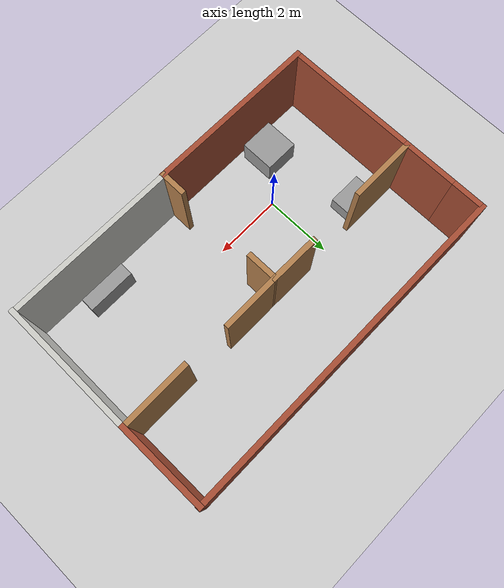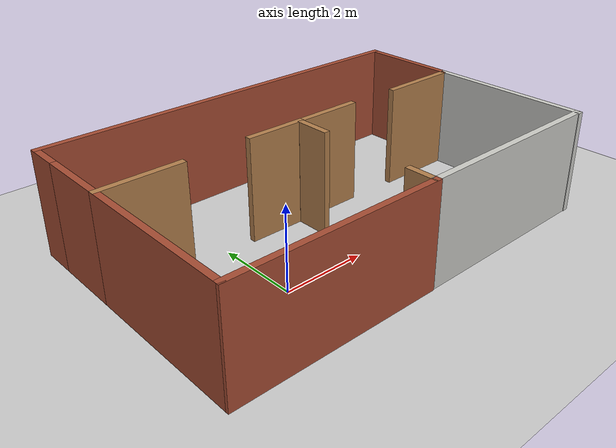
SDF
<sdf version="1.7">
 <world name="default">
  <light name="sun" type="directional">
   <pose>0 0 10 0 -0 0</pose>
   <diffuse>0.8 0.8 0.8 1</diffuse>
   <specular>0.2 0.2 0.2 1</specular>
   <attenuation>
    <range>1000</range>
    <constant>0.9</constant>
    <linear>0.01</linear>
    <quadratic>0.001</quadratic>
   </attenuation>
   <direction>-0.5 0.1 -0.9</direction>
   <spot><inner_angle>0</inner_angle><outer_angle>0</outer_angle><falloff>0</falloff></spot>
  </light>
  <model name="ground_plane">
   <static>1</static>
   <link name="link">
    <collision name="collision">
     <geometry><plane><normal>0 0 1</normal><size>100 100</size></plane></geometry>
     <surface>
      <contact><collide_bitmask>65535</collide_bitmask></contact>
      <friction><ode><mu>100</mu><mu2>50</mu2></ode></friction>
     </surface>
    </collision>
    <visual name="visual">
     <cast_shadows>0</cast_shadows>
     <geometry><plane><normal>0 0 1</normal><size>100 100</size></plane></geometry>
     <material>
      <script><uri>file://media/materials/scripts/gazebo.material</uri><name>Gazebo/Grey</name></script>
     </material>
    </visual>
   </link>
  </model>
  <include><uri>model://table_0</uri></include>
  <include><uri>model://table_1</uri></include>
  <include><uri>model://table_2</uri></include>
  <gravity>0 0 -9.8</gravity>
  <magnetic_field>6e-06 2.3e-05 -4.2e-05</magnetic_field>
  <atmosphere type="adiabatic"/>
  <physics type="ode">
   <max_step_size>0.001</max_step_size>
   <real_time_factor>1</real_time_factor>
   <real_time_update_rate>1000</real_time_update_rate>
  </physics>
  <scene><ambient>0.4 0.4 0.4 1</ambient><background>0.7 0.7 0.7 1</background><shadows>1</shadows></scene>
  <spherical_coordinates>
   <surface_model>EARTH_WGS84</surface_model>
   <latitude_deg>0</latitude_deg>
   <longitude_deg>0</longitude_deg>
   <elevation>0</elevation>
   <heading_deg>0</heading_deg>
  </spherical_coordinates>
  <model name="mieszkanko">
   <pose>2.13679 1.292 0 0 -0 0</pose>
   <link name="Wall_14">
    <collision name="Wall_14_Collision">
     <geometry><box><size>0.787078 0.15 2.5</size></box></geometry>
     <pose>0 0 1.25 0 -0 0</pose>
    </collision>
    <visual name="Wall_14_Visual">
     <pose>0 0 1.25 0 -0 0</pose>
     <geometry><box><size>0.787078 0.15 2.5</size></box></geometry>
     <material>
      <script><uri>file://media/materials/scripts/gazebo.material</uri><name>Gazebo/Wood</name></script>
      <ambient>1 1 1 1</ambient>
     </material>
     <meta><layer>0</layer></meta>
    </visual>
    <pose>-0.020932 -2.81207 0 0 -0 1.5708</pose>
   </link>
   <link name="Wall_16">
    <collision name="Wall_16_Collision">
     <geometry><box><size>0.96364 0.15 2.5</size></box></geometry>
     <pose>0 0 1.25 0 -0 0</pose>
    </collision>
    <visual name="Wall_16_Visual">
     <pose>0 0 1.25 0 -0 0</pose>
     <geometry><box><size>0.96364 0.15 2.5</size></box></geometry>
     <material>
      <script><uri>file://media/materials/scripts/gazebo.material</uri><name>Gazebo/Wood</name></script>
      <ambient>1 1 1 1</ambient>
     </material>
     <meta><layer>0</layer></meta>
    </visual>
    <pose>-0.010879 0.331176 0 0 -0 1.57542</pose>
   </link>
   <link name="Wall_22">
    <collision name="Wall_22_Collision">
     <geometry><box><size>5.06093 0.15 2.5</size></box></geometry>
     <pose>0 0 1.25 0 -0 0</pose>
    </collision>
    <visual name="Wall_22_Visual">
     <pose>0 0 1.25 0 -0 0</pose>
     <geometry><box><size>5.06093 0.15 2.5</size></box></geometry>
     <material>
      <script><uri>file://media/materials/scripts/gazebo.material</uri><name>Gazebo/Bricks</name></script>
      <ambient>1 1 1 1</ambient>
     </material>
     <meta><layer>0</layer></meta>
    </visual>
    <pose>-2.47635 -3.13061 0 0 -0 3.1354</pose>
   </link>
   <link name="Wall_23">
    <collision name="Wall_23_Collision">
     <geometry><box><size>3.96103 0.15 2.5</size></box></geometry>
     <pose>0 0 1.25 0 -0 0</pose>
    </collision>
    <visual name="Wall_23_Visual">
     <pose>0 0 1.25 0 -0 0</pose>
     <geometry><box><size>3.96103 0.15 2.5</size></box></geometry>
     <material>
      <script><uri>file://media/materials/scripts/gazebo.material</uri><name>Gazebo/Bricks</name></script>
      <ambient>1 1 1 1</ambient>
     </material>
     <meta><layer>0</layer></meta>
    </visual>
    <pose>-4.93177 -1.19468 0 0 -0 1.5708</pose>
   </link>
   <link name="Wall_31">
    <collision name="Wall_31_Collision">
     <geometry><box><size>2 0.15 2.5</size></box></geometry>
     <pose>0 0 1.25 0 -0 0</pose>
    </collision>
    <visual name="Wall_31_Visual">
     <pose>0 0 1.25 0 -0 0</pose>
     <geometry><box><size>2 0.15 2.5</size></box></geometry>
     <material>
      <script><uri>file://media/materials/scripts/gazebo.material</uri><name>Gazebo/Wood</name></script>
      <ambient>1 1 1 1</ambient>
     </material>
     <meta><layer>0</layer></meta>
    </visual>
    <pose>-4.00677 0.710841 0 0 -0 0</pose>
   </link>
   <link name="Wall_33">
    <collision name="Wall_33_Collision">
     <geometry><box><size>1.51329 0.15 2.5</size></box></geometry>
     <pose>0 0 1.25 0 -0 0</pose>
    </collision>
    <visual name="Wall_33_Visual">
     <pose>0 0 1.25 0 -0 0</pose>
     <geometry><box><size>1.51329 0.15 2.5</size></box></geometry>
     <material>
      <script><uri>file://media/materials/scripts/gazebo.material</uri><name>Gazebo/Wood</name></script>
      <ambient>1 1 1 1</ambient>
     </material>
     <meta><layer>0</layer></meta>
    </visual>
    <pose>-0.679162 0.744604 0 0 -0 3.13189</pose>
   </link>
   <link name="Wall_36">
    <collision name="Wall_36_Collision">
     <geometry><box><size>5.09128 0.15 2.5</size></box></geometry>
     <pose>0 0 1.25 0 -0 0</pose>
    </collision>
    <visual name="Wall_36_Visual">
     <pose>0 0 1.25 0 -0 0</pose>
     <geometry><box><size>5.09128 0.15 2.5</size></box></geometry>
     <material>
      <script><uri>file://media/materials/scripts/gazebo.material</uri><name>Gazebo/CeilingTiled</name></script>
      <ambient>0.760784 0.662745 0.627451 1</ambient>
     </material>
     <meta><layer>0</layer></meta>
    </visual>
    <pose>2.44969 -3.13822 0 0 -0 -0.003078</pose>
   </link>
   <link name="Wall_37">
    <collision name="Wall_37_Collision">
     <geometry><box><size>4.00002 0.15 2.5</size></box></geometry>
     <pose>0 0 1.25 0 -0 0</pose>
    </collision>
    <visual name="Wall_37_Visual">
     <pose>0 0 1.25 0 -0 0</pose>
     <geometry><box><size>4.00002 0.15 2.5</size></box></geometry>
     <material>
      <script><uri>file://media/materials/scripts/gazebo.material</uri><name>Gazebo/CeilingTiled</name></script>
      <ambient>0.760784 0.662745 0.627451 1</ambient>
     </material>
     <meta><layer>0</layer></meta>
    </visual>
    <pose>4.92607 -1.23603 0 0 -0 1.56781</pose>
   </link>
   <link name="Wall_38">
    <collision name="Wall_38_Collision">
     <geometry><box><size>2.08754 0.15 2.5</size></box></geometry>
     <pose>0 0 1.25 0 -0 0</pose>
    </collision>
    <visual name="Wall_38_Visual">
     <pose>0 0 1.25 0 -0 0</pose>
     <geometry><box><size>2.08754 0.15 2.5</size></box></geometry>
     <material>
      <script><uri>file://media/materials/scripts/gazebo.material</uri><name>Gazebo/Wood</name></script>
      <ambient>1 1 1 1</ambient>
     </material>
     <meta><layer>0</layer></meta>
    </visual>
    <pose>3.94784 0.688972 0 0 -0 3.14159</pose>
   </link>
   <link name="Wall_43">
    <collision name="Wall_43_Collision">
     <geometry><box><size>1.75376 0.15 2.5</size></box></geometry>
     <pose>0 0 1.25 0 -0 0</pose>
    </collision>
    <visual name="Wall_43_Visual">
     <pose>0 0 1.25 0 -0 0</pose>
     <geometry><box><size>1.75376 0.15 2.5</size></box></geometry>
     <material>
      <script><uri>file://media/materials/scripts/gazebo.material</uri><name>Gazebo/Wood</name></script>
      <ambient>1 1 1 1</ambient>
     </material>
     <meta><layer>0</layer></meta>
    </visual>
    <pose>0.789121 0.737992 0 0 -0 0</pose>
   </link>
   <link name="Wall_46">
    <collision name="Wall_46_Collision">
     <geometry><box><size>1.75 0.15 2.5</size></box></geometry>
     <pose>0 0 1.25 0 -0 0</pose>
    </collision>
    <visual name="Wall_46_Visual">
     <pose>0 0 1.25 0 -0 0</pose>
     <geometry><box><size>1.75 0.15 2.5</size></box></geometry>
     <material>
      <script><uri>file://media/materials/scripts/gazebo.material</uri><name>Gazebo/Bricks</name></script>
      <ambient>1 1 1 1</ambient>
     </material>
     <meta><layer>0</layer></meta>
    </visual>
    <pose>-4.93177 1.51084 0 0 -0 1.5708</pose>
   </link>
   <link name="Wall_47">
    <collision name="Wall_47_Collision">
     <geometry><box><size>1 0.15 2.5</size></box></geometry>
     <pose>0 0 1.25 0 -0 0</pose>
    </collision>
    <visual name="Wall_47_Visual">
     <pose>0 0 1.25 0 -0 0</pose>
     <geometry><box><size>1 0.15 2.5</size></box></geometry>
     <material>
      <script><uri>file://media/materials/scripts/gazebo.material</uri><name>Gazebo/Bricks</name></script>
      <ambient>1 1 1 1</ambient>
     </material>
     <meta><layer>0</layer></meta>
    </visual>
    <pose>-4.93177 2.73584 0 0 -0 1.5708</pose>
   </link>
   <link name="Wall_48">
    <collision name="Wall_48_Collision">
     <geometry><box><size>10.0115 0.15 2.5</size></box></geometry>
     <pose>0 0 1.25 0 -0 0</pose>
    </collision>
    <visual name="Wall_48_Visual">
     <pose>0 0 1.25 0 -0 0</pose>
     <geometry><box><size>10.0115 0.15 2.5</size></box></geometry>
     <material>
      <script><uri>file://media/materials/scripts/gazebo.material</uri><name>Gazebo/Bricks</name></script>
      <ambient>1 1 1 1</ambient>
     </material>
     <meta><layer>0</layer></meta>
    </visual>
    <pose>-0.001018 3.16084 0 0 -0 0</pose>
   </link>
   <link name="Wall_49">
    <collision name="Wall_49_Collision">
     <geometry><box><size>2.62191 0.15 2.5</size></box></geometry>
     <pose>0 0 1.25 0 -0 0</pose>
    </collision>
    <visual name="Wall_49_Visual">
     <pose>0 0 1.25 0 -0 0</pose>
     <geometry><box><size>2.62191 0.15 2.5</size></box></geometry>
     <material>
      <script><uri>file://media/materials/scripts/gazebo.material</uri><name>Gazebo/Bricks</name></script>
      <ambient>1 1 1 1</ambient>
     </material>
     <meta><layer>0</layer></meta>
    </visual>
    <pose>4.92503 1.92491 0 0 -0 -1.5653</pose>
   </link>
   <static>1</static>
  </model>
 </world>
</sdf>

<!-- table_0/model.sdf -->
<sdf version='1.7'>
  <model name='table_0'>
    <link name='link'>
      <inertial>
        <mass>1</mass>
        <inertia>
          <ixx>0.166667</ixx>
          <ixy>0</ixy>
          <ixz>0</ixz>
          <iyy>0.166667</iyy>
          <iyz>0</iyz>
          <izz>0.166667</izz>
        </inertia>
        <pose>0 0 0 0 -0 0</pose>
      </inertial>
      <self_collide>0</self_collide>
      <enable_wind>0</enable_wind>
      <kinematic>0</kinematic>
      <pose> -1.6 1.55 0.25 0 -0 0</pose>
      <gravity>1</gravity>
      <visual name='visual'>
        <geometry>
          <box>
            <size>1 0.6 0.5</size>
          </box>
        </geometry>
        <material>
          <script>
            <name>Gazebo/Grey</name>
            <uri>file://media/materials/scripts/gazebo.material</uri>
          </script>
          <shader type='pixel'>
            <normal_map>__default__</normal_map>
          </shader>
          <ambient>0.3 0.3 0.3 1</ambient>
          <diffuse>0.7 0.7 0.7 1</diffuse>
          <specular>0.01 0.01 0.01 1</specular>
          <emissive>0 0 0 1</emissive>
        </material>
        <pose>0 0 0 0 -0 0</pose>
        <transparency>0</transparency>
        <cast_shadows>1</cast_shadows>
      </visual>
      <collision name='collision'>
        <laser_retro>0</laser_retro>
        <max_contacts>10</max_contacts>
        <pose>0 0 0 0 -0 0</pose>
        <geometry>
          <box>
            <size>1 0.6 0.5</size>
          </box>
        </geometry>
        <surface>
          <friction>
            <ode>
              <mu>1</mu>
              <mu2>1</mu2>
              <fdir1>0 0 0</fdir1>
              <slip1>0</slip1>
              <slip2>0</slip2>
            </ode>
            <torsional>
              <coefficient>1</coefficient>
              <patch_radius>0</patch_radius>
              <surface_radius>0</surface_radius>
              <use_patch_radius>1</use_patch_radius>
              <ode>
                <slip>0</slip>
              </ode>
            </torsional>
          </friction>
          <bounce>
            <restitution_coefficient>0</restitution_coefficient>
            <threshold>1e+06</threshold>
          </bounce>
          <contact>
            <collide_without_contact>0</collide_without_contact>
            <collide_without_contact_bitmask>1</collide_without_contact_bitmask>
            <collide_bitmask>1</collide_bitmask>
            <ode>
              <soft_cfm>0</soft_cfm>
              <soft_erp>0.2</soft_erp>
              <kp>1e+13</kp>
              <kd>1</kd>
              <max_vel>0.01</max_vel>
              <min_depth>0</min_depth>
            </ode>
            <bullet>
              <split_impulse>1</split_impulse>
              <split_impulse_penetration_threshold>-0.01</split_impulse_penetration_threshold>
              <soft_cfm>0</soft_cfm>
              <soft_erp>0.2</soft_erp>
              <kp>1e+13</kp>
              <kd>1</kd>
            </bullet>
          </contact>
        </surface>
      </collision>
    </link>
    <static>1</static>
    <allow_auto_disable>1</allow_auto_disable>
  </model>
</sdf>

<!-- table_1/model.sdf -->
<sdf version='1.7'>
  <model name='table_1'>
    <link name='link'>
      <inertial>
        <mass>1</mass>
        <inertia>
          <ixx>0.166667</ixx>
          <ixy>0</ixy>
          <ixz>0</ixz>
          <iyy>0.166667</iyy>
          <iyz>0</iyz>
          <izz>0.166667</izz>
        </inertia>
        <pose>0 0 0 0 -0 0</pose>
      </inertial>
      <self_collide>0</self_collide>
      <enable_wind>0</enable_wind>
      <kinematic>0</kinematic>
      <pose> 5.0 -1.3 0.4 0 -0 0</pose>
      <gravity>1</gravity>
      <visual name='visual'>
        <geometry>
          <box>
            <size>1.4 0.4 0.8</size>
          </box>
        </geometry>
        <material>
          <script>
            <name>Gazebo/Grey</name>
            <uri>file://media/materials/scripts/gazebo.material</uri>
          </script>
          <shader type='pixel'>
            <normal_map>__default__</normal_map>
          </shader>
          <ambient>0.3 0.3 0.3 1</ambient>
          <diffuse>0.7 0.7 0.7 1</diffuse>
          <specular>0.01 0.01 0.01 1</specular>
          <emissive>0 0 0 1</emissive>
        </material>
        <pose>0 0 0 0 -0 0</pose>
        <transparency>0</transparency>
        <cast_shadows>1</cast_shadows>
      </visual>
      <collision name='collision'>
        <laser_retro>0</laser_retro>
        <max_contacts>10</max_contacts>
        <pose>0 0 0 0 -0 0</pose>
        <geometry>
          <box>
            <size>1.4 0.4 0.8</size>
          </box>
        </geometry>
        <surface>
          <friction>
            <ode>
              <mu>1</mu>
              <mu2>1</mu2>
              <fdir1>0 0 0</fdir1>
              <slip1>0</slip1>
              <slip2>0</slip2>
            </ode>
            <torsional>
              <coefficient>1</coefficient>
              <patch_radius>0</patch_radius>
              <surface_radius>0</surface_radius>
              <use_patch_radius>1</use_patch_radius>
              <ode>
                <slip>0</slip>
              </ode>
            </torsional>
          </friction>
          <bounce>
            <restitution_coefficient>0</restitution_coefficient>
            <threshold>1e+06</threshold>
          </bounce>
          <contact>
            <collide_without_contact>0</collide_without_contact>
            <collide_without_contact_bitmask>1</collide_without_contact_bitmask>
            <collide_bitmask>1</collide_bitmask>
            <ode>
              <soft_cfm>0</soft_cfm>
              <soft_erp>0.2</soft_erp>
              <kp>1e+13</kp>
              <kd>1</kd>
              <max_vel>0.01</max_vel>
              <min_depth>0</min_depth>
            </ode>
            <bullet>
              <split_impulse>1</split_impulse>
              <split_impulse_penetration_threshold>-0.01</split_impulse_penetration_threshold>
              <soft_cfm>0</soft_cfm>
              <soft_erp>0.2</soft_erp>
              <kp>1e+13</kp>
              <kd>1</kd>
            </bullet>
          </contact>
        </surface>
      </collision>
    </link>
    <static>1</static>
    <allow_auto_disable>1</allow_auto_disable>
  </model>
</sdf>

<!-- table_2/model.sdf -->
<sdf version='1.7'>
  <model name='table_2'>
    <link name='link'>
      <inertial>
        <mass>1</mass>
        <inertia>
          <ixx>0.166667</ixx>
          <ixy>0</ixy>
          <ixz>0</ixz>
          <iyy>0.166667</iyy>
          <iyz>0</iyz>
          <izz>0.166667</izz>
        </inertia>
        <pose>0 0 0 0 -0 0</pose>
      </inertial>
      <self_collide>0</self_collide>
      <enable_wind>0</enable_wind>
      <kinematic>0</kinematic>
      <pose> -1.0 -1.1 0.375 0 -0 0</pose>
      <gravity>1</gravity>
      <visual name='visual'>
        <geometry>
          <box>
            <size>1 1 0.75</size>
          </box>
        </geometry>
        <material>
          <script>
            <name>Gazebo/Grey</name>
            <uri>file://media/materials/scripts/gazebo.material</uri>
          </script>
          <shader type='pixel'>
            <normal_map>__default__</normal_map>
          </shader>
          <ambient>0.3 0.3 0.3 1</ambient>
          <diffuse>0.7 0.7 0.7 1</diffuse>
          <specular>0.01 0.01 0.01 1</specular>
          <emissive>0 0 0 1</emissive>
        </material>
        <pose>0 0 0 0 -0 0</pose>
        <transparency>0</transparency>
        <cast_shadows>1</cast_shadows>
      </visual>
      <collision name='collision'>
        <laser_retro>0</laser_retro>
        <max_contacts>10</max_contacts>
        <pose>0 0 0 0 -0 0</pose>
        <geometry>
          <box>
            <size>1 1 0.75</size>
          </box>
        </geometry>
        <surface>
          <friction>
            <ode>
              <mu>1</mu>
              <mu2>1</mu2>
              <fdir1>0 0 0</fdir1>
              <slip1>0</slip1>
              <slip2>0</slip2>
            </ode>
            <torsional>
              <coefficient>1</coefficient>
              <patch_radius>0</patch_radius>
              <surface_radius>0</surface_radius>
              <use_patch_radius>1</use_patch_radius>
              <ode>
                <slip>0</slip>
              </ode>
            </torsional>
          </friction>
          <bounce>
            <restitution_coefficient>0</restitution_coefficient>
            <threshold>1e+06</threshold>
          </bounce>
          <contact>
            <collide_without_contact>0</collide_without_contact>
            <collide_without_contact_bitmask>1</collide_without_contact_bitmask>
            <collide_bitmask>1</collide_bitmask>
            <ode>
              <soft_cfm>0</soft_cfm>
              <soft_erp>0.2</soft_erp>
              <kp>1e+13</kp>
              <kd>1</kd>
              <max_vel>0.01</max_vel>
              <min_depth>0</min_depth>
            </ode>
            <bullet>
              <split_impulse>1</split_impulse>
              <split_impulse_penetration_threshold>-0.01</split_impulse_penetration_threshold>
              <soft_cfm>0</soft_cfm>
              <soft_erp>0.2</soft_erp>
              <kp>1e+13</kp>
              <kd>1</kd>
            </bullet>
          </contact>
        </surface>
      </collision>
    </link>
    <static>1</static>
    <allow_auto_disable>1</allow_auto_disable>
  </model>
</sdf>
